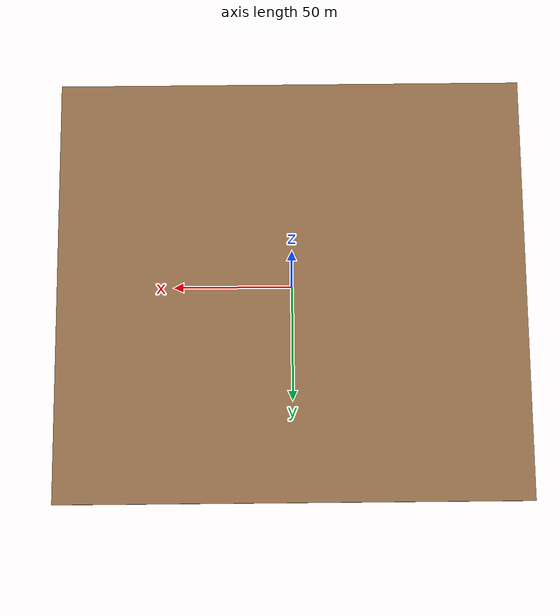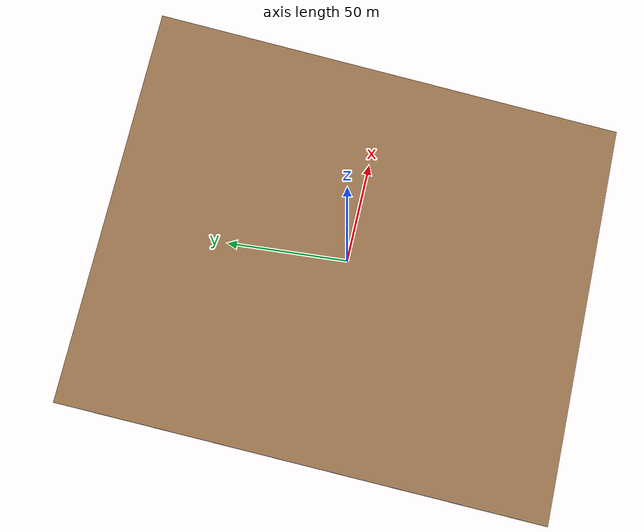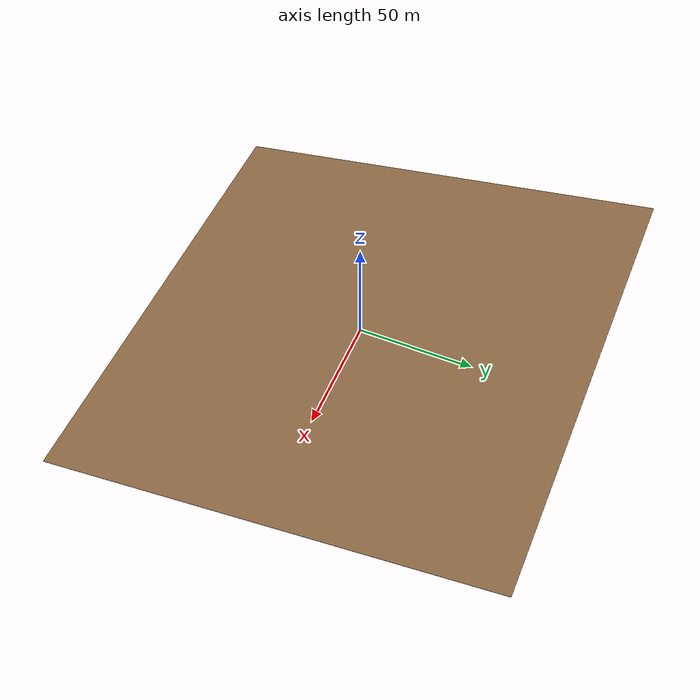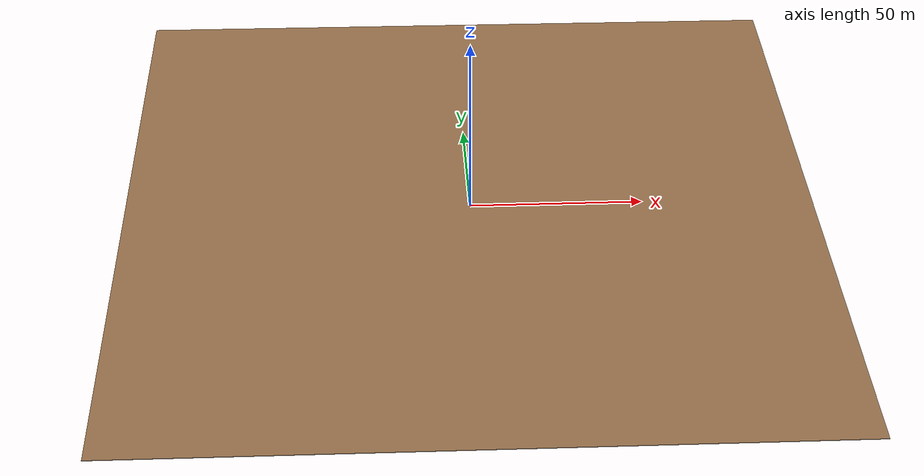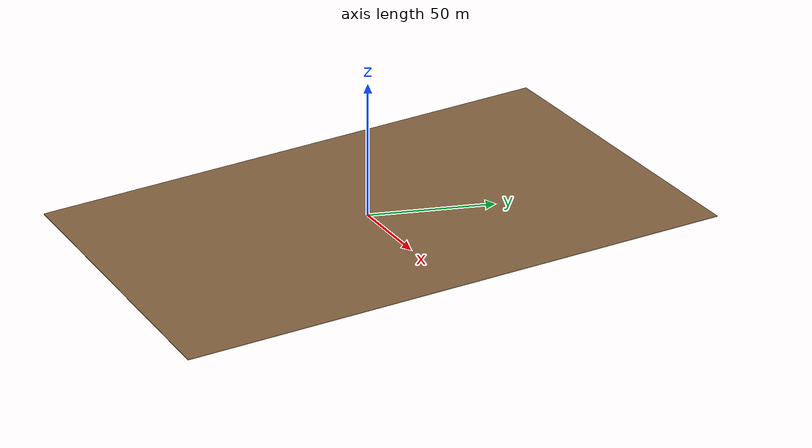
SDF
<?xml version="1.0"?>
<sdf version="1.6">
  <world name="mars_incline_10deg">

    <physics type="ode">
      <max_step_size>0.001</max_step_size>
      <real_time_factor>1.0</real_time_factor>
      <real_time_update_rate>1000</real_time_update_rate>
    </physics>

    <gravity>0 0 -3.711</gravity>

    <include>
      <uri>model://sun</uri>
    </include>

    <!-- Inclined plane implemented by rotating the terrain model -->
    <include>
      <uri>model://regolith_flat</uri>
      <name>terrain</name>
      <pose>0 0 0 0.1745329252 0 0</pose> <!-- 10 deg about X -->
    </include>

    <plugin name="terrain_preset" filename="libterrain_preset_plugin.so">
      <preset>regolith_nominal</preset>
      <target_model>terrain</target_model>
      <target_link>ground</target_link>
    </plugin>

  </world>
</sdf>

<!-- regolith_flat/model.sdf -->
<sdf version="1.6">
  <model name="regolith_flat">
    <static>true</static>
    <link name="ground">
      <collision name="collision">
        <geometry>
          <plane>
            <normal>0 0 1</normal>
            <size>200 200</size>
          </plane>
        </geometry>
        <surface>
          <friction>
            <ode>
              <mu>0.7</mu>
              <mu2>0.7</mu2>
            </ode>
          </friction>
          <bounce>
            <restitution_coefficient>0.05</restitution_coefficient>
          </bounce>
        </surface>
      </collision>

      <visual name="visual">
        <geometry>
          <plane>
            <normal>0 0 1</normal>
            <size>200 200</size>
          </plane>
        </geometry>
        <material>
          <ambient>0.60 0.45 0.30 1</ambient>
          <diffuse>0.60 0.45 0.30 1</diffuse>
        </material>
      </visual>
    </link>
  </model>
</sdf>
